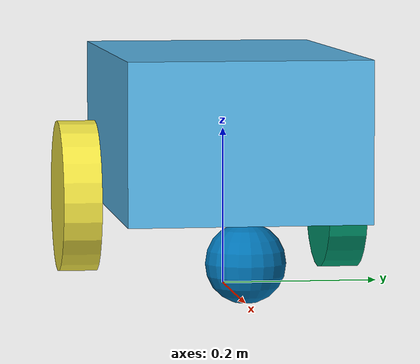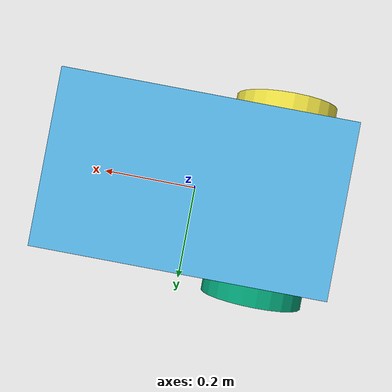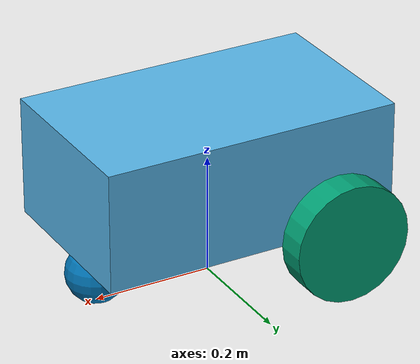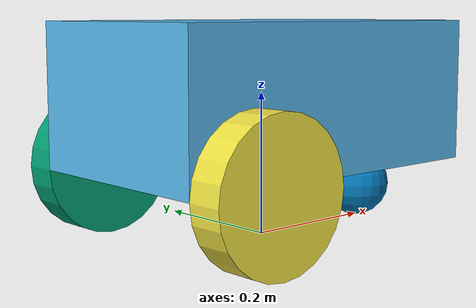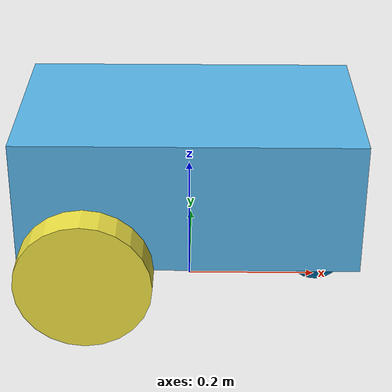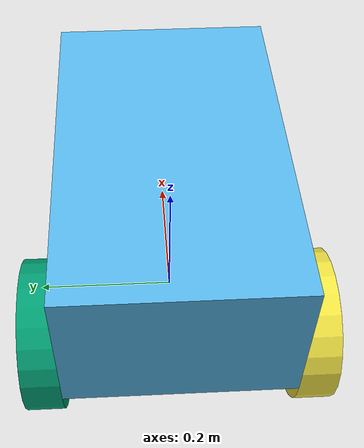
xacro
<?xml version="1.0"?>
<robot xmlns:xacro="http://www.ros.org/wiki/xacro">

 <!-- Robot dimensions -->
    <xacro:property name="base_length" value="0.5"/>
    <xacro:property name="base_width" value="0.3"/>
    <xacro:property name="base_height" value="0.2"/>

    <xacro:property name="wheel_radius" value="0.1"/>
    <xacro:property name="wheel_width" value="0.05"/>

    <xacro:property name="caster_radius" value="0.05"/>

    <!-- Base Footprint -->
    <link name="base_footprint"/>

    <!-- Base Link -->
    <link name="base_link">
        <visual>
            <geometry>
                <box size="${base_length} ${base_width} ${base_height}"/>
            </geometry>
            <origin xyz="0 0 ${base_height/2 + wheel_radius}" rpy="0 0 0"/>
            <material name="base_link_material"/>
        </visual>
        <collision>
            <geometry>
                <box size="${base_length} ${base_width} ${base_height}"/>
            </geometry>
            <origin xyz="0 0 ${base_height/2 + wheel_radius}" rpy="0 0 0"/>
        </collision>
        <xacro:box_inertia
            m="2.0"
            x="${base_length}"
            y="${base_width}"
            z="${base_height}"
            o_xyz="0 0 ${base_height/2 + wheel_radius}"
            o_rpy="0 0 0"/>
    </link>

    <!-- Wheel Macro-->
    <xacro:macro name="wheel" params="prefix">
        <link name="${prefix}_wheel">
            <visual>
                <geometry>
                    <cylinder radius="${wheel_radius}" length="${wheel_width}"/>
                </geometry>
                <origin xyz="0 0 0" rpy="${pi/2.0} 0 0"/>
                <material name="wheel_material"/>
            </visual>
            <collision>
                <geometry>
                    <sphere radius="${wheel_radius}"/>
                </geometry>
                <origin xyz="0 0 0" rpy="${pi/2.0} 0 0"/>
            </collision>
            <xacro:cylinder_inertia
                m="0.5"
                r="${wheel_radius}"
                l="${wheel_width}"
                o_xyz="0 0 0"
                o_rpy="${pi/2.0} 0 0"/>
        </link>

        </xacro:macro>
    <!-- Left Wheel -->
    <xacro:wheel prefix="left"/>

    <!-- Right Wheel -->
    <xacro:wheel prefix="right"/>

    <!-- Caster Wheel -->
    <link name="caster_wheel">
        <visual>
            <geometry>
                <sphere radius="${caster_radius}"/>
            </geometry>
            <origin xyz="0 0 0"/>
            <material name="wheel_material"/>
        </visual>
        <collision>
            <geometry>
                <sphere radius="${caster_radius}"/>
            </geometry>
            <origin xyz="0 0 0"/>
        </collision>
            <xacro:sphere_inertia
        m="0.2"
        r="${caster_radius}"
        o_xyz="0 0 0"
        o_rpy="0 0 0"/>
    </link>

    <!-- Base Footprint Joint -->
    <joint name="base_footprint_joint" type="fixed">
        <parent link="base_footprint"/>
        <child link="base_link"/>
        <origin xyz="0 0 0"/>
    </joint>

    <!-- Left Wheel Joint -->
    <joint name="left_wheel_joint" type="continuous">
        <parent link="base_link"/>
        <child link="left_wheel"/>
        <origin xyz="${-base_length/2 + wheel_radius} ${base_width/2 + wheel_width/2} ${wheel_radius}" rpy="0 0 0"/>
        <axis xyz="0 1 0"/>
    </joint>

    <!-- Right Wheel Joint -->
    <joint name="right_wheel_joint" type="continuous">
        <parent link="base_link"/>
        <child link="right_wheel"/>
        <origin xyz="${-base_length/2 + wheel_radius} ${-base_width/2 - wheel_width/2} ${wheel_radius}" rpy="0 0 0"/>
        <axis xyz="0 1 0"/>
    </joint>

    <!-- Caster Joint -->
    <joint name="caster_base" type="fixed">
        <parent link="base_link"/>
        <child link="caster_wheel"/>
        <origin xyz="${base_length/2 - caster_radius} 0 ${caster_radius}" rpy="0 0 0"/>
    </joint>
</robot>
